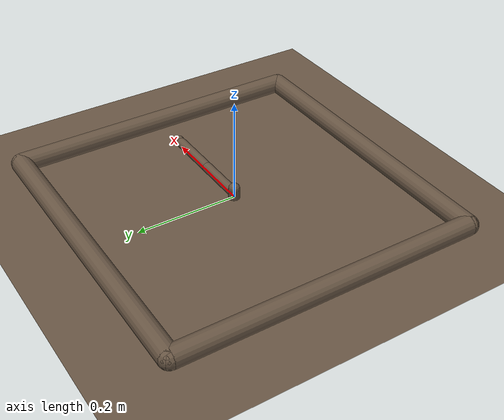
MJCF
<mujoco model="reacher">
  <compiler angle="radian" inertiafromgeom="true"/>
  <default>
    <joint armature="1" damping="1" limited="true"/>
    <geom conaffinity="0" contype="0" friction="1 0.1 0.1" rgba="0.4 0.33 0.26 1.0"/>
  </default>
  <!-- Removed RK4 integrator for brax. -->
  <option gravity="0 0 -9.81" timestep="0.01" />
  <visual>
    <headlight ambient="0.5 0.5 0.5" diffuse="0.9 0.9 0.9" specular="0.2 0.2 0.2"/>
    <map znear="0.01" zfar="30"/>
  </visual>
  <asset>
    <texture builtin="gradient" height="100" rgb1=".58 .60 .62" rgb2="0.12 0.12 0.14" type="skybox" width="100"/>
    <texture builtin="checker" height="100" name="texplane" rgb1="0.92 0.92 0.92" rgb2="0.86 0.86 0.86" type="2d" width="100"/>
    <material name="MatPlane" reflectance="0.12" shininess="0.08" specular="0.08" texrepeat="20 20" texture="texplane"/>
  </asset>
  <worldbody>
    <light diffuse=".5 .5 .5" pos="0 0 3" dir="0 0 -1"/>
    <!-- Arena -->
    <geom conaffinity="0" contype="0" name="ground" pos="0 0 0" size="1 1 10" type="plane" material="MatPlane"/>
    <camera name="fixedfar" pos="0 -0.6 0.6" zaxis="0 -1 1" mode="fixed"/>
    <geom conaffinity="0" fromto="-.3 -.3 .01 .3 -.3 .01" name="sideS" size=".02" type="capsule"/>
    <geom conaffinity="0" fromto=" .3 -.3 .01 .3  .3 .01" name="sideE" size=".02" type="capsule"/>
    <geom conaffinity="0" fromto="-.3  .3 .01 .3  .3 .01" name="sideN" size=".02" type="capsule"/>
    <geom conaffinity="0" fromto="-.3 -.3 .01 -.3 .3 .01" name="sideW" size=".02" type="capsule"/>
    <!-- Arm -->
    <geom conaffinity="0" contype="0" fromto="0 0 0 0 0 0.02" name="root" size=".011" type="capsule"/>
    <body name="body0" pos="0 0 .01">
      <geom fromto="0 0 0 0.1 0 0" name="link0" size=".01" type="capsule"/>
      <joint axis="0 0 1" limited="false" name="joint0" pos="0 0 0" type="hinge"/>
      <body name="body1" pos="0.1 0 0">
        <!-- Added onboard cameras and agent site for safegoal rendering -->
        <camera name="vision" pos="0 0 0.05" xyaxes="0 -1 0 0 0 1" fovy="90"/>
        <camera name="vision_back" pos="0 0 0.05" xyaxes="0 1 0 0 0 1" fovy="90"/>
        <site name="agent" pos="0.05 0 0" size="0.01" type="sphere" rgba="1 0 0 0.1"/>
        <joint axis="0 0 1" limited="true" name="joint1" pos="0 0 0" range="-3.0 3.0" type="hinge"/>
        <geom fromto="0 0 0 0.1 0 0" name="link1" size=".01" type="capsule"/>
        <body name="fingertip" pos="0.11 0 0">
          <geom contype="0" name="fingertip" pos="0 0 0" size=".01" type="sphere"/>
        </body>
      </body>
    </body>
  </worldbody>
  <actuator>
    <motor ctrllimited="true" ctrlrange="-1.0 1.0" gear="200.0" joint="joint0"/>
    <motor ctrllimited="true" ctrlrange="-1.0 1.0" gear="200.0" joint="joint1"/>
  </actuator>
</mujoco>
